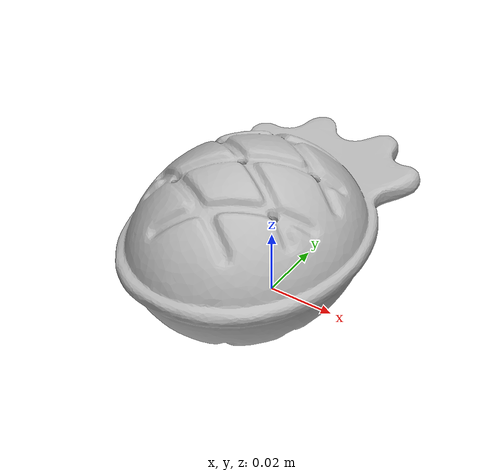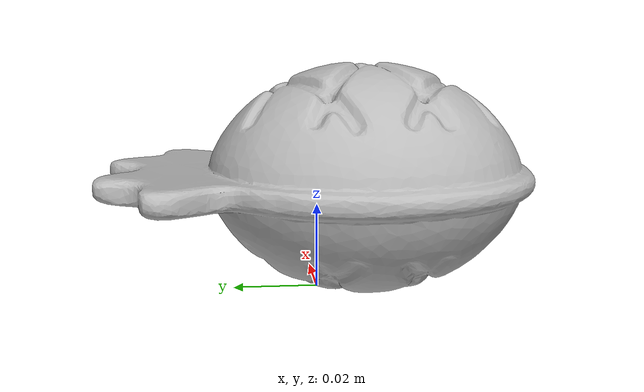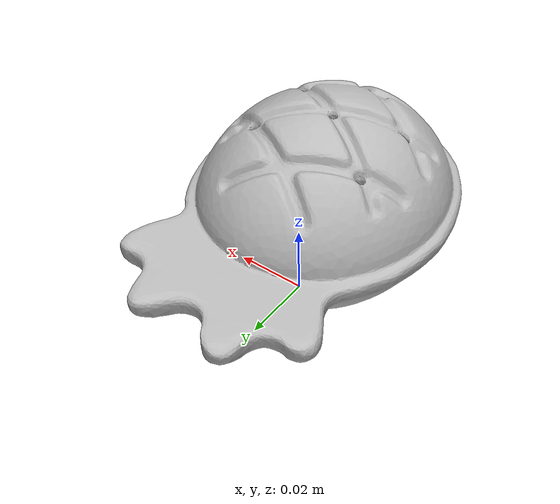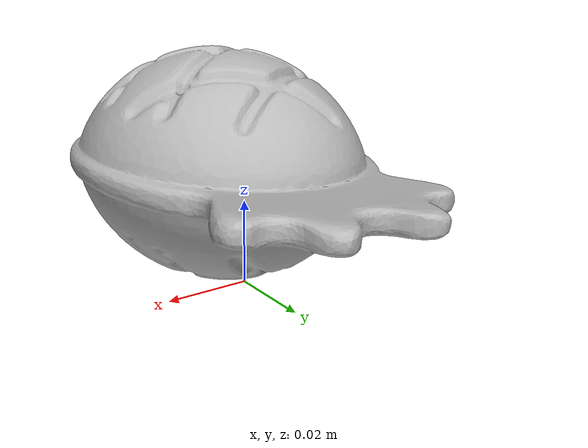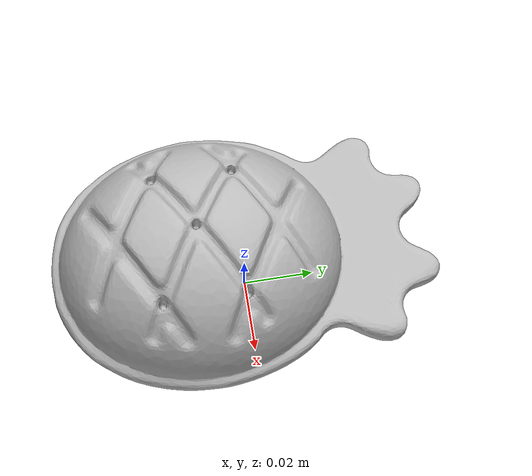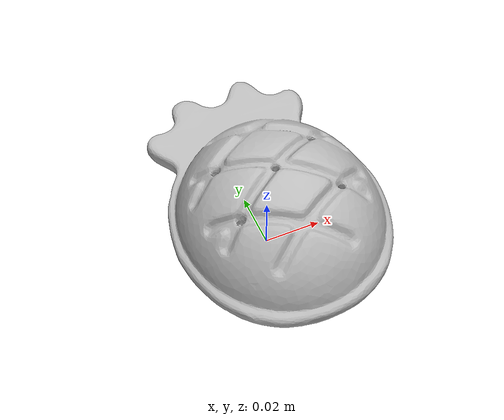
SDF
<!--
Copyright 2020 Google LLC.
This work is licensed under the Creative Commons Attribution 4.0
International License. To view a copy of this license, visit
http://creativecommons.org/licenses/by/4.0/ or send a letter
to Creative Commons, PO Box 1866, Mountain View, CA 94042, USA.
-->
<?xml version="1.0" ?>
<sdf version="1.6">
  <model name="PINEAPPLE_MARACA_6_PCSSET">
    <link name="link_0">
      <visual name="visual">
        <geometry>
          <mesh>
            <uri>meshes/model.obj</uri>
          </mesh>
        </geometry>
      </visual>
      <collision name="collision_0">
        <geometry>
          <mesh>
            <uri>meshes/model.obj</uri>
          </mesh>
        </geometry>
      </collision>
    </link>
  </model>
</sdf>
